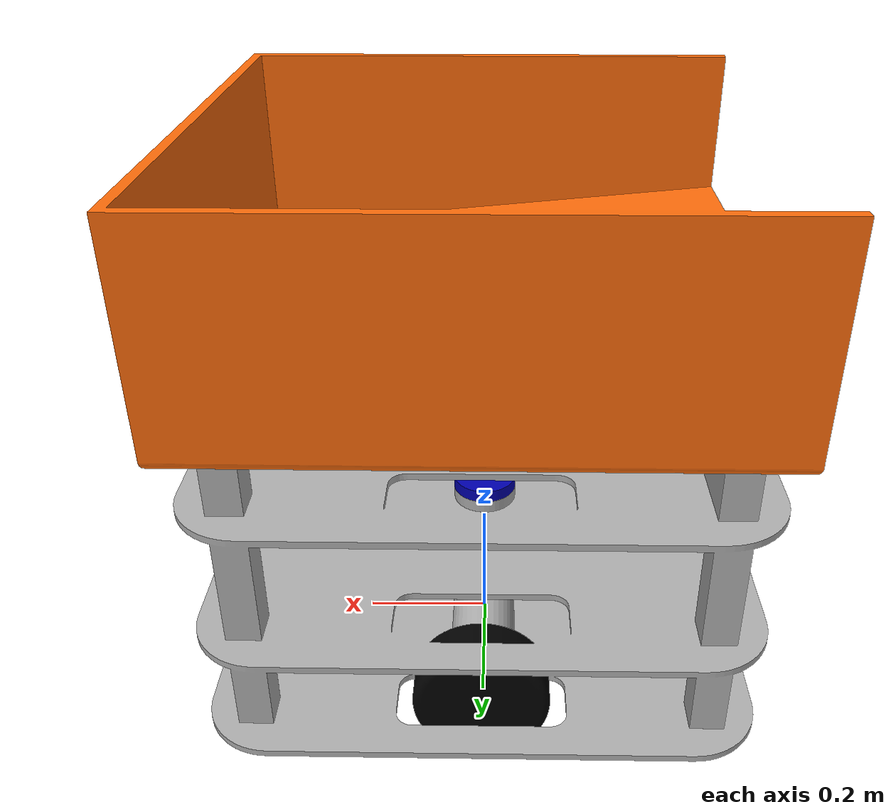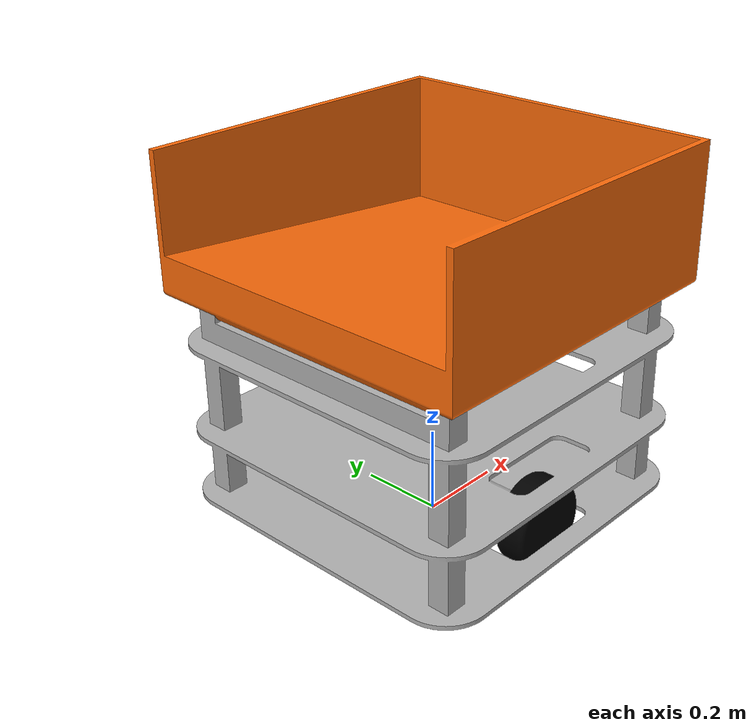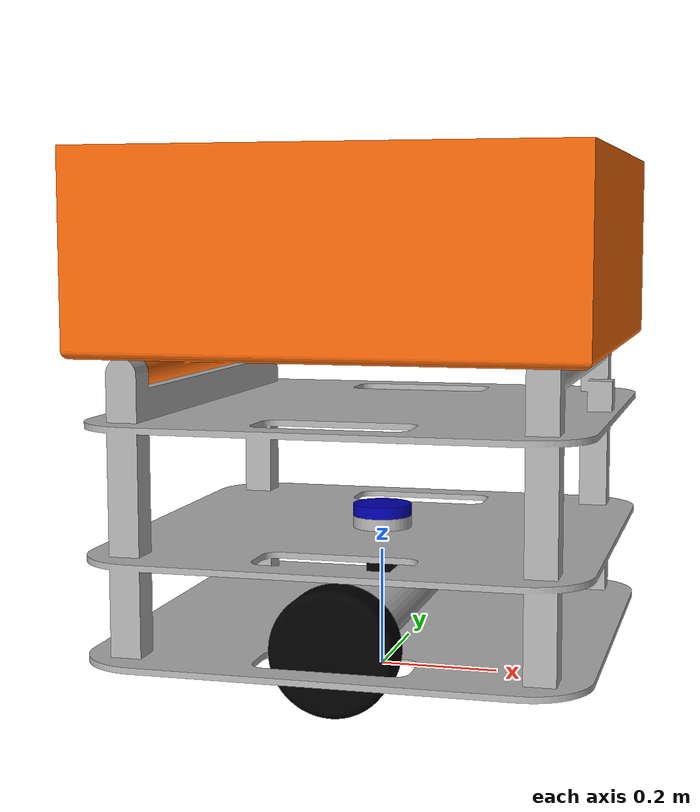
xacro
<?xml version="1.0" ?>
<robot xmlns:xacro="http://www.ros.org/wiki/xacro">

  <xacro:include filename="inertial_macros.xacro"/>
  <xacro:include filename="$(find factory_amr_description)/urdf/materials.xacro" />
  <xacro:include filename="$(find factory_amr_description)/urdf/factory_amr1.trans" />
  <xacro:include filename="$(find factory_amr_description)/urdf/factory_amr.gazebo" />

  <link name="base_link">
    <inertial>
      <origin xyz="-0.002396599951463409 2.104073385822183e-15 0.2688636212913025" rpy="0 0 0"/>
      <mass value="5"/>
      <inertia ixx="2.322166" iyy="2.720165" izz="3.470128" ixy="0.0" iyz="0.0" ixz="-0.006447"/>
    </inertial>
    <visual>
      <origin xyz="0 0 0" rpy="0 0 0"/>
      <geometry>
        <mesh filename="file://$(find factory_amr_description)/meshes/base_link.stl" scale="0.001 0.001 0.001"/>
      </geometry>
      <material name="silver"/>
    </visual>
    <collision>
      <origin xyz="0 0 0" rpy="0 0 0"/>
      <geometry>
        <mesh filename="file://$(find factory_amr_description)/meshes/base_link.stl" scale="0.001 0.001 0.001"/>
      </geometry>
    </collision>
  </link>
  <gazebo reference="base_link">
    <material>Gazebo/White</material>
  </gazebo>

  <joint name="base_footprint_joint" type="fixed">
    <parent link="base_link"/>
    <child link="base_footprint"/>
    <origin xyz="0 0 0" rpy="0 0 0"/>
  </joint>

  <link name="base_footprint"/>

  <link name="right_wheel_link">
    <inertial>
      <origin xyz="-1.5713222806367798e-17 -0.03750000000000003 0.0" rpy="0 0 0"/>
      <mass value="0.5"/>
      <inertia ixx="0.006279" iyy="0.010596" izz="0.006279" ixy="0.0" iyz="-0.0" ixz="-0.0"/>
    </inertial>
    <visual>
      <origin xyz="-0.0 -0.1 -0.24" rpy="-${pi/2} 0 0"/>
      <geometry>
        <mesh filename="file://$(find factory_amr_description)/meshes/right_wheel_1.stl" scale="0.001 0.001 0.001" rpy="0 0 0"/>
      </geometry>
      <material name="black"/>
    </visual>
    <collision>
      <origin xyz="-0.0 -0.1 -0.24" rpy="-${pi/2} 0 0"/>
      <geometry>
        <mesh filename="file://$(find factory_amr_description)/meshes/right_wheel_1.stl" scale="0.001 0.001 0.001"/>
      </geometry>
    </collision>

  </link>
  <gazebo reference="right_wheel_link">
    <material>Gazebo/Black</material>
  </gazebo>

  <link name="left_wheel_link">
    <inertial>
      <origin xyz="0.0 0.03749999999999998 1.3877787807814457e-17" rpy="0 0 0"/>
      <mass value="0.5"/>
      <inertia ixx="0.006279" iyy="0.010596" izz="0.006279" ixy="0.0" iyz="0.0" ixz="0.0"/>
    </inertial>
    <visual>
      <origin xyz="0 0.1 -0.24" rpy="${pi/2} 0 0"/>
      <geometry>
        <mesh filename="file://$(find factory_amr_description)/meshes/left_wheel_1.stl" scale="0.001 0.001 0.001" rpy="0 0 0"/>
      </geometry>
      <material name="black"/>
    </visual>
    <collision>
      <origin xyz="0 0.1 -0.24" rpy="${pi/2} 0 0"/>
      <geometry>
        <mesh filename="file://$(find factory_amr_description)/meshes/left_wheel_1.stl" scale="0.001 0.001 0.001"/>
      </geometry>
    </collision>
  </link>
  <gazebo reference="left_wheel_link">
    <material>Gazebo/Black</material>
  </gazebo>

  <link name="luggage_link">
    <inertial>
      <origin xyz="0.2776968707983327 -0.2999999999999999 0.08670656285317513" rpy="0 0 0"/>
      <mass value="3"/>
      <inertia ixx="9.105387" iyy="8.394601" izz="16.079343" ixy="0.0" iyz="-0.0" ixz="-0.544919"/>
    </inertial>
    <visual>
      <origin xyz="0.325 -0.3 -0.525" rpy="0 0 0"/>
      <geometry>
        <mesh filename="file://$(find factory_amr_description)/meshes/revolute_1.stl" scale="0.001 0.001 0.001"/>
      </geometry>
      <material name="orange"/>
    </visual>
    <collision>
      <origin xyz="0.325 -0.3 -0.525" rpy="0 0 0"/>
      <geometry>
        <mesh filename="file://$(find factory_amr_description)/meshes/revolute_1.stl" scale="0.001 0.001 0.001"/>
      </geometry>
    </collision>
  </link>
  <gazebo reference="luggage_link">
    <material>Gazebo/Orange</material>
  </gazebo>

  <link name="imu_link">
    <inertial>
      <origin xyz="0.0 0.0 -0.0050000000000000044" rpy="0 0 0"/>
      <mass value="0.1256"/>
      <inertia ixx="1.8e-05" iyy="1.8e-05" izz="3.3e-05" ixy="0.0" iyz="0.0" ixz="0.0"/>
    </inertial>
    <visual>
      <origin xyz="-0.0 -0.0 -0.23" rpy="0 0 0"/>
      <geometry>
        <mesh filename="file://$(find factory_amr_description)/meshes/imu_1.stl" scale="0.001 0.001 0.001"/>
      </geometry>
      <material name="red"/>
    </visual>
    <collision>
      <origin xyz="-0.0 -0.0 -0.23" rpy="0 0 0"/>
      <geometry>
        <mesh filename="file://$(find factory_amr_description)/meshes/imu_1.stl" scale="0.001 0.001 0.001"/>
      </geometry>
    </collision>
  </link>
  <gazebo reference="imu_link">
    <material>Gazebo/Red</material>
  </gazebo>

  <joint name="front_caster" type="fixed">
    <parent link="base_link"/>
    <child link="front_caster_link"/>
    <origin xyz="0.3 0 0.05"/>
  </joint>
  <link name="front_caster_link">
    <visual>
      <geometry>
        <sphere radius="0.03"/> <!-- Reduced size from 0.05 -->
      </geometry>
      <material name="black"/>
    </visual>
    <collision>
      <geometry>
        <sphere radius="0.03"/> <!-- Reduced size from 0.05 -->
      </geometry>
    </collision>
    <xacro:inertial_sphere mass="0.1" radius="0.03"> <!-- Adjusted mass and radius -->
      <origin xyz="0 0 0" rpy="0 0 0"/>
    </xacro:inertial_sphere>
  </link>
  <gazebo reference="front_caster">
    <material>Gazebo/Black</material>
    <mu1 value="0.001"/>
    <mu2 value="0.001"/>
  </gazebo>

  <joint name="back_caster" type="fixed">
    <parent link="base_link"/>
    <child link="back_caster_link"/>
    <origin xyz="-0.3 0 0.05"/>
  </joint>
  <link name="back_caster_link">
    <visual>
      <geometry>
        <sphere radius="0.03"/> <!-- Reduced size from 0.05 -->
      </geometry>
      <material name="black"/>
    </visual>
    <collision>
      <geometry>
        <sphere radius="0.03"/> <!-- Reduced size from 0.05 -->
      </geometry>
    </collision>
    <xacro:inertial_sphere mass="0.1" radius="0.03"> <!-- Adjusted mass and radius -->
      <origin xyz="0 0 0" rpy="0 0 0"/>
    </xacro:inertial_sphere>
  </link>
  <gazebo reference="back_caster">
    <material>Gazebo/Black</material>
    <mu1 value="0.001"/>
    <mu2 value="0.001"/>
  </gazebo>

  <joint name="right_wheel_joint" type="continuous">
    <origin xyz="0.0 -0.25 0.1" rpy="${pi/2} 0 0"/>
    <parent link="base_link"/>
    <child link="right_wheel_link"/>
    <axis xyz="0.0 0.0 -1.0"/>
    <limit effort="10" velocity="1.0"/>
  </joint>

  <joint name="left_wheel_joint" type="continuous">
    <origin xyz="0.0 0.25 0.1" rpy="-${pi/2} 0 0"/>
    <parent link="base_link"/>
    <child link="left_wheel_link"/>
    <axis xyz="0.0 0.0 1.0"/>
    <limit effort="10" velocity="1.0"/>
  </joint>

  <joint name="luggage_joint" type="revolute">
    <origin xyz="-0.325 0.3 0.525" rpy="0 0 0"/>
    <parent link="base_link"/>
    <child link="luggage_link"/>
    <axis xyz="0.0 -1.0 0.0"/>
    <limit upper="0.785398" lower="0.0" effort="100" velocity="100"/>
  </joint>

  <joint name="imu_joint" type="fixed">
    <origin xyz="0.0 0.0 0.23" rpy="0 0 0"/>
    <parent link="base_link"/>
    <child link="imu_link"/>
  </joint>

  <joint name="laser_joint" type="fixed">
      <origin xyz="0.0 0.0 0.26" rpy="0 0 0"/>
      <parent link="base_link"/>
      <child link="laser_frame"/>
  </joint>

  <link name="laser_frame">
      <inertial>
          <origin xyz="-7.237528875152536e-18 -1.447505775030507e-17 0.010000000000000009" rpy="0 0 0"/>
          <mass value="1.2330751165339937"/>
          <inertia ixx="0.000812" iyy="0.000812" izz="0.001541" ixy="-0.0" iyz="0.0" ixz="0.0"/>
      </inertial>
      <visual>
          <origin xyz="-0.0 -0.0 -0.26" rpy="0 0 0"/>
          <geometry>
              <mesh filename="file://$(find factory_amr_description)/meshes/lidar_1.stl" scale="0.001 0.001 0.001"/>
          </geometry>
          <material name="blue"/>
      </visual>
      <collision>
          <origin xyz="-0.0 -0.0 -0.26" rpy="0 0 0"/>
          <geometry>
              <mesh filename="file://$(find factory_amr_description)/meshes/lidar_1.stl" scale="0.001 0.001 0.001"/>
          </geometry>
      </collision>
  </link>

  <gazebo reference="laser_frame">
      <material>Gazebo/Blue</material>

      <sensor name="laser" type="ray">
          <pose> 0 0 0 0 0 0 </pose>
          <visualize>true</visualize>
          <update_rate>10</update_rate>
          <ray>
              <scan>
              <horizontal>
                  <samples>360</samples>
                  <resolution>1</resolution>
                  <min_angle>-3.14</min_angle>
                  <max_angle>3.14</max_angle>
              </horizontal>
              </scan>
              <range>
              <min>0.6</min>
              <max>12</max>
              </range>
          </ray>
          <plugin name="laser_controller" filename="libgazebo_ros_ray_sensor.so">
              <ros>
                  <argument>~/out:=factory_amr1/scan</argument>
              </ros>
              <output_type>sensor_msgs/LaserScan</output_type>
              <frame_name>factory_amr1/laser_frame</frame_name>
          </plugin>
      </sensor>
  </gazebo>

</robot>

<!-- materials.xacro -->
<robot name="factory_amr" xmlns:xacro="http://www.ros.org/wiki/xacro" >

<material name="silver">
  <color rgba="0.700 0.700 0.700 1.000"/>
</material>

<material name="black">
  <color rgba="0.000 0.000 0.000 1.000"/>
</material>

<material name="red">
  <color rgba="0.800 0.000 0.000 1.000"/>
</material>

<material name="blue">
  <color rgba="0.000 0.000 0.700 1.000"/>
</material>

<material name="orange">
  <color rgba="1.000 0.4235 0.0392 1.000"/>
</material>

</robot>

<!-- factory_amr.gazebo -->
<robot name="factory_amr" xmlns:xacro="http://www.ros.org/wiki/xacro" >

<xacro:property name="body_color" value="Gazebo/Silver" />

<gazebo>
  <plugin name="control" filename="libgazebo_ros_control.so"/>
</gazebo>
<gazebo reference="base_link">
  <material>${body_color}</material>
  <mu1>0.2</mu1>
  <mu2>0.2</mu2>
  <self_collide>true</self_collide>
  <gravity>true</gravity>
</gazebo>

<gazebo reference="right_wheel_1">
  <material>${body_color}</material>
  <mu1>0.2</mu1>
  <mu2>0.2</mu2>
  <self_collide>true</self_collide>
</gazebo>

<gazebo reference="left_wheel_1">
  <material>${body_color}</material>
  <mu1>0.2</mu1>
  <mu2>0.2</mu2>
  <self_collide>true</self_collide>
</gazebo>

<gazebo reference="revolute_1">
  <material>${body_color}</material>
  <mu1>0.2</mu1>
  <mu2>0.2</mu2>
  <self_collide>true</self_collide>
</gazebo>

<gazebo reference="lidar_1">
  <material>${body_color}</material>
  <mu1>0.2</mu1>
  <mu2>0.2</mu2>
  <self_collide>true</self_collide>
</gazebo>

<gazebo reference="imu_1">
  <material>${body_color}</material>
  <mu1>0.2</mu1>
  <mu2>0.2</mu2>
  <self_collide>true</self_collide>
</gazebo>

<gazebo reference="camera_1">
  <material>${body_color}</material>
  <mu1>0.2</mu1>
  <mu2>0.2</mu2>
  <self_collide>true</self_collide>
</gazebo>

</robot>
